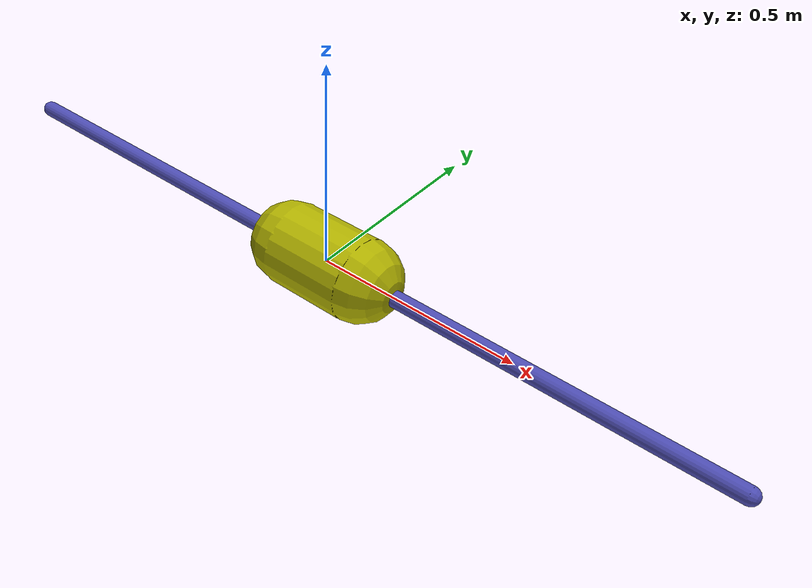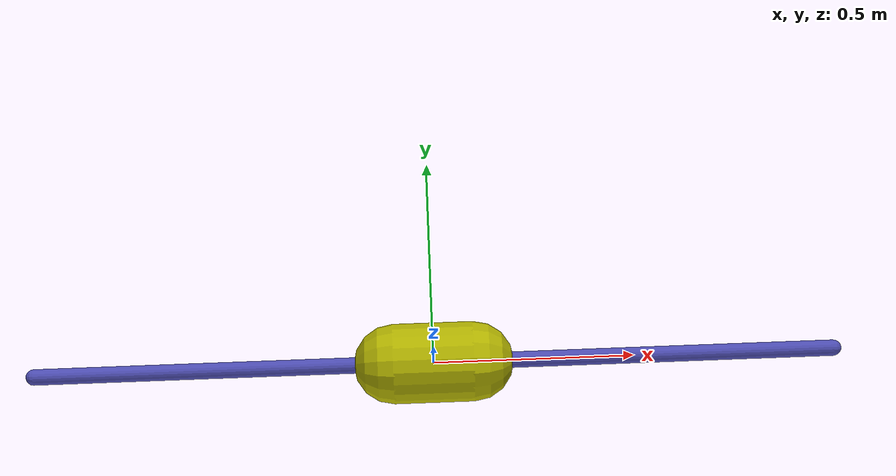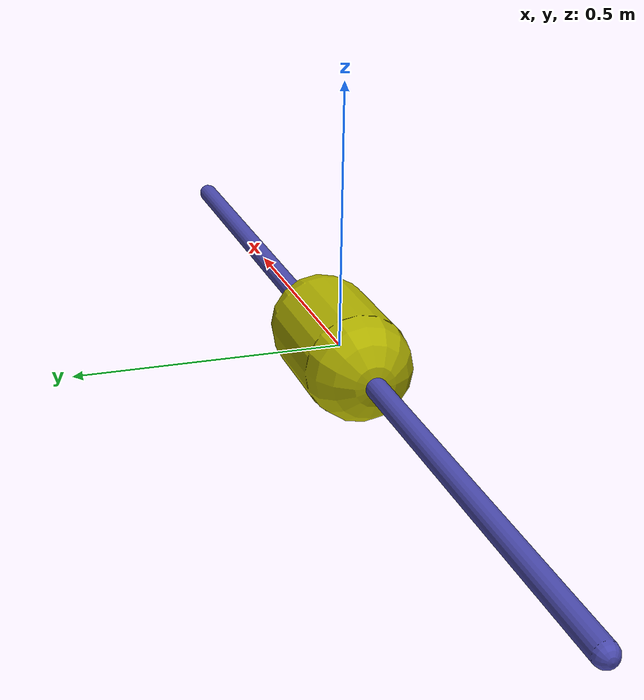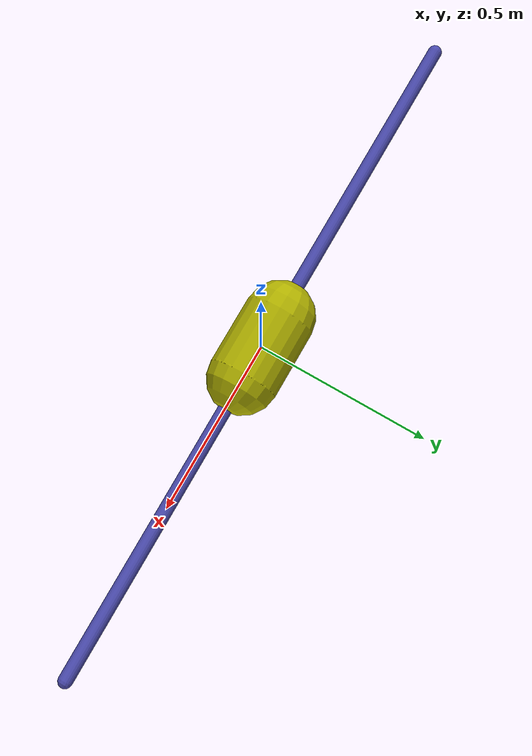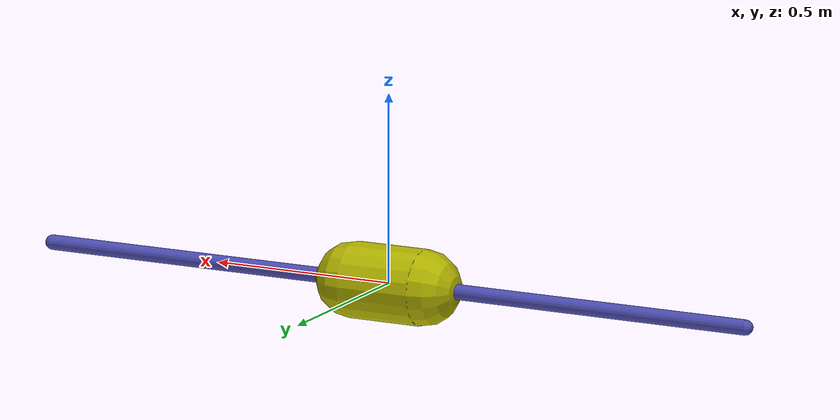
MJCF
<mujoco model="oned_point">
	<compiler inertiafromgeom="true"/>
	<default>
		<joint armature="0" damping="1" limited="true"/>
		<geom contype="0" friction="1 0.1 0.1" rgba="0.7 0.7 0 1"/>
		<tendon/>
		<motor ctrlrange="-3 3"/>
	</default>
	<option gravity="0 0 -9.81" integrator="RK4" timestep="0.02"/>
	<size nstack="3000"/>
	<worldbody>
		<!--geom name="ground" type="plane" pos="0 0 0" /-->
		<geom name="rail" pos="0 0 0" quat="0.707 0 0.707 0" rgba="0.3 0.3 0.7 1" size="0.02 1" type="capsule"/>
		<body name="cart" pos="0 0 0">
			<joint axis="1 0 0" limited="true" name="slider" pos="0 0 0" range="-1 1" type="slide"/>
			<geom name="cart" pos="0 0 0" quat="0.707 0 0.707 0" size="0.1 0.1" type="capsule"/>
		</body>
	</worldbody>
	<actuator>
		<motor gear="100" joint="slider" name="slide"/>
	</actuator>
</mujoco>
